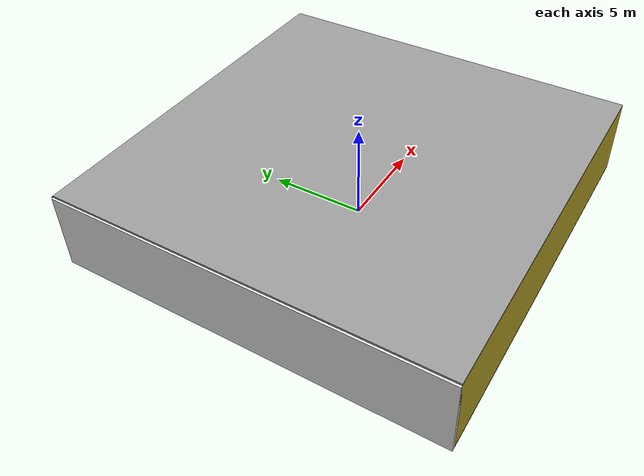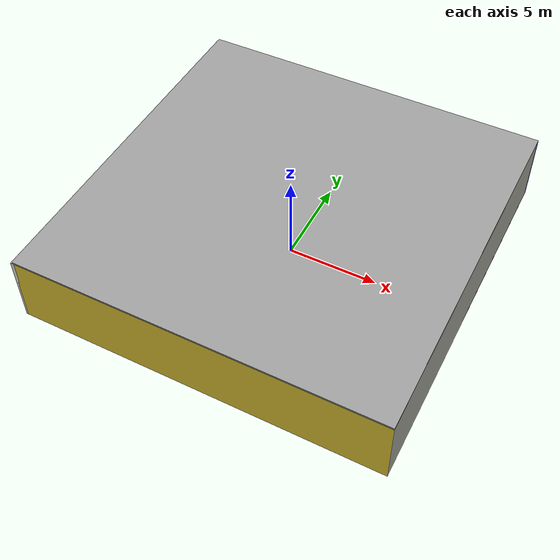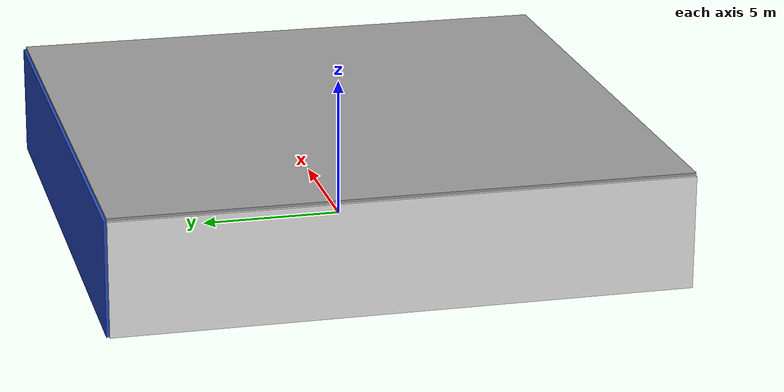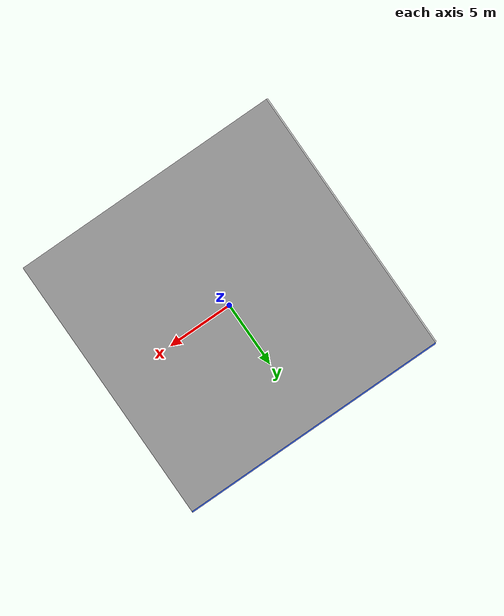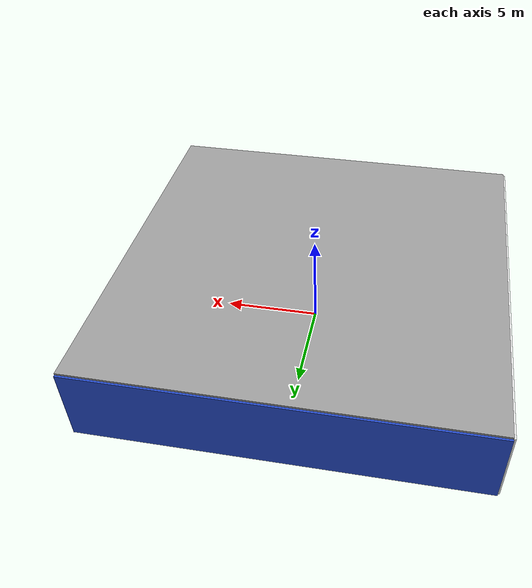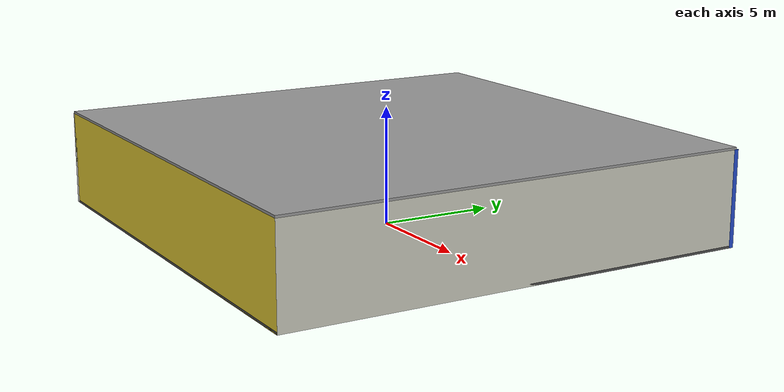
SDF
<sdf version="1.4">
 <world name="default">
  <physics type="ode">
   <max_step_size>0.001</max_step_size>
   <real_time_factor>1</real_time_factor>
   <real_time_update_rate>1000</real_time_update_rate>
   <gravity>0 0 -9.8</gravity>
  </physics>
  <scene><ambient>0.4 0.4 0.4 1</ambient><background>0.7 0.7 0.7 1</background><shadows>1</shadows></scene>
  <model name="Surrounding">
   <static>1</static>
   <link name="Ceiling">
    <collision name="Ceiling_Collision"><geometry><box><size>20 20 0.1</size></box></geometry></collision>
    <visual name="Ceiling_Visual">
     <geometry><box><size>20 20 0.1</size></box></geometry>
     <material>
      <script><uri>file://media/materials/scripts/gazebo.material</uri><name>Gazebo/GreyGradientSky</name></script>
     </material>
    </visual>
    <pose>0 0 4.05 0 0 0</pose>
   </link>
   <link name="Wall_South">
    <collision name="Wall_South_Collision">
     <geometry><box><size>20 0 4</size></box></geometry>
     <pose>0 0 2 0 -0 0</pose>
    </collision>
    <visual name="Wall_South_Visual">
     <pose>0 0 2 0 -0 0</pose>
     <geometry><box><size>20 0 4</size></box></geometry>
     <material>
      <script><uri>file://media/materials/scripts/gazebo.material</uri><name>Gazebo/ZincYellow</name></script>
     </material>
    </visual>
    <velocity_decay><linear>0</linear><angular>0</angular></velocity_decay>
    <pose>0 -10 0 0 -0 0</pose>
   </link>
   <link name="Wall_East">
    <collision name="Wall_21_Collision">
     <geometry><box><size>20 0 4</size></box></geometry>
     <pose>0 0 2 0 -0 0</pose>
    </collision>
    <visual name="Wall_21_Visual">
     <pose>0 0 2 0 -0 0</pose>
     <geometry><box><size>20 0 4</size></box></geometry>
     <material>
      <script><uri>file://media/materials/scripts/gazebo.material</uri><name>Gazebo/PaintedWall</name></script>
     </material>
    </visual>
    <velocity_decay><linear>0</linear><angular>0</angular></velocity_decay>
    <pose>10 0 0 0 -0 1.5708</pose>
   </link>
   <link name="Wall_North">
    <collision name="Wall_22_Collision">
     <geometry><box><size>20 0.2 4</size></box></geometry>
     <pose>0 0 2 0 -0 0</pose>
    </collision>
    <visual name="Wall_22_Visual">
     <pose>0 0 2 0 -0 0</pose>
     <geometry><box><size>20 0.2 4</size></box></geometry>
     <material>
      <script><uri>file://media/materials/scripts/gazebo.material</uri><name>Gazebo/Blue</name></script>
     </material>
    </visual>
    <velocity_decay><linear>0</linear><angular>0</angular></velocity_decay>
    <pose>0 10 0 0 -0 0</pose>
   </link>
   <link name="Wall_West">
    <collision name="Wall_23_Collision">
     <geometry><box><size>20 0.2 4</size></box></geometry>
     <pose>0 0 2 0 -0 0</pose>
    </collision>
    <visual name="Wall_23_Visual">
     <pose>0 0 2 0 -0 0</pose>
     <geometry><box><size>20 0.2 4</size></box></geometry>
     <material>
      <script><uri>file://media/materials/scripts/gazebo.material</uri><name>Gazebo/White</name></script>
     </material>
    </visual>
    <velocity_decay><linear>0</linear><angular>0</angular></velocity_decay>
    <pose>-10 0 0 0 0 -1.5708</pose>
   </link>
   <link name="Ground_link">
    <collision name="collision">
     <pose>0 0 .05 0 -0 0</pose>
     <geometry><box><size>20 20 0.1</size></box></geometry>
    </collision>
    <visual name="visual">
     <pose>0 0 .05 0 -0 0</pose>
     <geometry><box><size>20 20 0.1</size></box></geometry>
     <material>
      <script><uri>file://media/materials/scripts/gazebo.material</uri><name>Gazebo/Road</name></script>
     </material>
    </visual>
   </link>
   <static>1</static>
  </model>
  <spherical_coordinates>
   <surface_model>EARTH_WGS84</surface_model>
   <latitude_deg>0</latitude_deg>
   <longitude_deg>0</longitude_deg>
   <elevation>0</elevation>
   <heading_deg>0</heading_deg>
  </spherical_coordinates>
  <light name="lightball_0" type="diffuse">
   <diffuse>0.8 0.8 0.8 1</diffuse>
   <specular>0.2 0.2 0.2 1</specular>
   <attenuation>
    <range>100</range>
    <constant>0.7</constant>
    <linear>0.01</linear>
    <quadratic>0.001</quadratic>
   </attenuation>
   <direction>-0.5 0.1 -0.9</direction>
   <pose>-8.95656472653 -6.40976438693 1.66415629581 0 0 0</pose>
  </light>
  <light name="lightball_1" type="diffuse">
   <diffuse>0.8 0.8 0.8 1</diffuse>
   <specular>0.2 0.2 0.2 1</specular>
   <attenuation>
    <range>100</range>
    <constant>0.7</constant>
    <linear>0.01</linear>
    <quadratic>0.001</quadratic>
   </attenuation>
   <direction>-0.5 0.1 -0.9</direction>
   <pose>9.69741231444 4.11507671143 3.01096656596 0 0 0</pose>
  </light>
  <light name="lightball_2" type="diffuse">
   <diffuse>0.8 0.8 0.8 1</diffuse>
   <specular>0.2 0.2 0.2 1</specular>
   <attenuation>
    <range>100</range>
    <constant>0.7</constant>
    <linear>0.01</linear>
    <quadratic>0.001</quadratic>
   </attenuation>
   <direction>-0.5 0.1 -0.9</direction>
   <pose>-6.60478995753 -8.1776593749 2.99916539339 0 0 0</pose>
  </light>
  <light name="lightball_3" type="diffuse">
   <diffuse>0.8 0.8 0.8 1</diffuse>
   <specular>0.2 0.2 0.2 1</specular>
   <attenuation>
    <range>100</range>
    <constant>0.7</constant>
    <linear>0.01</linear>
    <quadratic>0.001</quadratic>
   </attenuation>
   <direction>-0.5 0.1 -0.9</direction>
   <pose>9.28355231894 -3.02266999013 2.34538460349 0 0 0</pose>
  </light>
  <light name="lightball_4" type="diffuse">
   <diffuse>0.8 0.8 0.8 1</diffuse>
   <specular>0.2 0.2 0.2 1</specular>
   <attenuation>
    <range>100</range>
    <constant>0.7</constant>
    <linear>0.01</linear>
    <quadratic>0.001</quadratic>
   </attenuation>
   <direction>-0.5 0.1 -0.9</direction>
   <pose>-7.1904250861 3.57681249187 2.11845033051 0 0 0</pose>
  </light>
  <light name="lightball_5" type="diffuse">
   <diffuse>0.8 0.8 0.8 1</diffuse>
   <specular>0.2 0.2 0.2 1</specular>
   <attenuation>
    <range>100</range>
    <constant>0.7</constant>
    <linear>0.01</linear>
    <quadratic>0.001</quadratic>
   </attenuation>
   <direction>-0.5 0.1 -0.9</direction>
   <pose>2.57347813518 -6.50707295855 3.72717426003 0 0 0</pose>
  </light>
  <light name="lightball_6" type="diffuse">
   <diffuse>0.8 0.8 0.8 1</diffuse>
   <specular>0.2 0.2 0.2 1</specular>
   <attenuation>
    <range>100</range>
    <constant>0.7</constant>
    <linear>0.01</linear>
    <quadratic>0.001</quadratic>
   </attenuation>
   <direction>-0.5 0.1 -0.9</direction>
   <pose>6.2414964168 8.81862836815 3.45095171356 0 0 0</pose>
  </light>
  <light name="lightball_7" type="diffuse">
   <diffuse>0.8 0.8 0.8 1</diffuse>
   <specular>0.2 0.2 0.2 1</specular>
   <attenuation>
    <range>100</range>
    <constant>0.7</constant>
    <linear>0.01</linear>
    <quadratic>0.001</quadratic>
   </attenuation>
   <direction>-0.5 0.1 -0.9</direction>
   <pose>7.29330375253 -7.11240543455 3.41980044639 0 0 0</pose>
  </light>
  <light name="lightball_8" type="diffuse">
   <diffuse>0.8 0.8 0.8 1</diffuse>
   <specular>0.2 0.2 0.2 1</specular>
   <attenuation>
    <range>100</range>
    <constant>0.7</constant>
    <linear>0.01</linear>
    <quadratic>0.001</quadratic>
   </attenuation>
   <direction>-0.5 0.1 -0.9</direction>
   <pose>2.96397367949 -4.19860016724 2.23440967013 0 0 0</pose>
  </light>
  <light name="lightball_9" type="diffuse">
   <diffuse>0.8 0.8 0.8 1</diffuse>
   <specular>0.2 0.2 0.2 1</specular>
   <attenuation>
    <range>100</range>
    <constant>0.7</constant>
    <linear>0.01</linear>
    <quadratic>0.001</quadratic>
   </attenuation>
   <direction>-0.5 0.1 -0.9</direction>
   <pose>1.36943159606 -0.115611174357 3.57435727398 0 0 0</pose>
  </light>
  <light name="lightball_10" type="diffuse">
   <diffuse>0.8 0.8 0.8 1</diffuse>
   <specular>0.2 0.2 0.2 1</specular>
   <attenuation>
    <range>100</range>
    <constant>0.7</constant>
    <linear>0.01</linear>
    <quadratic>0.001</quadratic>
   </attenuation>
   <direction>-0.5 0.1 -0.9</direction>
   <pose>-7.61027652959 -2.88195027195 2.7940658504 0 0 0</pose>
  </light>
  <light name="lightball_11" type="diffuse">
   <diffuse>0.8 0.8 0.8 1</diffuse>
   <specular>0.2 0.2 0.2 1</specular>
   <attenuation>
    <range>100</range>
    <constant>0.7</constant>
    <linear>0.01</linear>
    <quadratic>0.001</quadratic>
   </attenuation>
   <direction>-0.5 0.1 -0.9</direction>
   <pose>9.54113243022 -3.25964320136 2.24223868771 0 0 0</pose>
  </light>
  <light name="lightball_12" type="diffuse">
   <diffuse>0.8 0.8 0.8 1</diffuse>
   <specular>0.2 0.2 0.2 1</specular>
   <attenuation>
    <range>100</range>
    <constant>0.7</constant>
    <linear>0.01</linear>
    <quadratic>0.001</quadratic>
   </attenuation>
   <direction>-0.5 0.1 -0.9</direction>
   <pose>1.64743428146 9.66639169285 2.88046624696 0 0 0</pose>
  </light>
  <include>
   <uri>model://textured_shapes</uri>
   <pose>-6.81862579993 7.40741879117 0 0 0 0.818285114282</pose>
  </include>
  <include><uri>model://cabinet</uri><pose>-4.54440933378 1.98441896151 0 0 0 1.68584507394</pose></include>
  <include><uri>model://table</uri><pose>-1.64347201726 -5.21431995025 0 0 0 3.02452960997</pose></include>
  <include>
   <uri>model://robocup_3Dsim_goal</uri>
   <pose>-1.97027054663 3.91381774581 0 0 0 2.38912909402</pose>
  </include>
  <include><uri>model://table</uri><pose>4.62953112102 -2.04412155969 0 0 0 2.66130934287</pose></include>
  <include><uri>model://table</uri><pose>8.14734120685 -0.821210332196 0 0 0 2.07956607926</pose></include>
 </world>
</sdf>

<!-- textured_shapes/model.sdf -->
<sdf version="1.6">
  <model name="textured_shapes">
    <pose>0 0 0.5 0 0 0</pose>
    <link name="box">
      <pose>0 -1.5 0 0 0 0</pose>
      <collision name="collision">
        <geometry>
          <box>
            <size>1 1 1</size>
          </box>
        </geometry>
      </collision>
      <visual name="visual">
        <geometry>
          <box>
            <size>1 1 1</size>
          </box>
        </geometry>
        <material>
          <script>
            <uri>model://../model_source/models/textured_shapes/materials/scripts</uri>
            <uri>model://../model_source/models/textured_shapes/materials/textures</uri>
            <name>TexturedShape/Squares</name>
          </script>
        </material>
      </visual>
    </link>
    <link name="sphere">
      <collision name="collision">
        <geometry>
          <sphere>
            <radius>0.5</radius>
          </sphere>
        </geometry>
      </collision>
      <visual name="visual">
        <geometry>
          <sphere>
            <radius>0.5</radius>
          </sphere>
        </geometry>
        <material>
          <script>
            <uri>model://../model_source/models/textured_shapes/materials/scripts</uri>
            <uri>model://../model_source/models/textured_shapes/materials/textures</uri>
            <name>TexturedShape/Squares</name>
          </script>
        </material>
      </visual>
    </link>
    <link name="cylinder">
      <pose>0 1.5 0 0 0 0</pose>
      <collision name="collision">
        <geometry>
          <cylinder>
            <radius>0.5</radius>
            <length>1</length>
          </cylinder>
        </geometry>
      </collision>
      <visual name="visual">
        <geometry>
          <cylinder>
            <radius>0.5</radius>
            <length>1</length>
          </cylinder>
        </geometry>
        <material>
          <script>
            <uri>model://../model_source/models/textured_shapes/materials/scripts</uri>
            <uri>model://../model_source/models/textured_shapes/materials/textures</uri>
            <name>TexturedShape/Squares</name>
          </script>
        </material>
      </visual>
    </link>
  </model>
</sdf>

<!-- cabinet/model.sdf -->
<sdf version="1.5">
  <model name="cabinet">
    <static>true</static>
    <link name="cabinet_bottom_plate">
      <inertial>
        <pose>0 0 -1 0 0 0</pose>
        <inertia>
          <ixx>2.050000</ixx>
          <ixy>0</ixy>
          <ixz>0</ixz>
          <iyy>2.050000</iyy>
          <iyz>0</iyz>
          <izz>2.050000</izz>
        </inertia>
        <mass>25.000000</mass>
      </inertial>
      <collision name="cabinet_bottom_plate_geom">
        <pose>0 0 0.010000 0 0 0</pose>
        <geometry>
          <box>
            <size>0.450000 0.450000 0.020000</size>
          </box>
        </geometry>
      </collision>
      <visual name="cabinet_bottom_plate_geom_visual">
        <pose>0 0 0.010000 0 0 0</pose>
        <geometry>
          <box>
            <size>0.450000 0.450000 0.020000</size>
          </box>
        </geometry>
        <material>
          <script>
            <uri>model://media/materials/scripts/gazebo.material</uri>
            <name>Gazebo/Wood</name>
          </script>
        </material>
      </visual>
      <collision name="cabinet_bottom_plate_geom_cabinet_back_plate">
        <pose>0.235000 0 0.510000 0 0 0</pose>
        <geometry>
          <box>
            <size>0.020000 0.450000 1.020000</size>
          </box>
        </geometry>
      </collision>
      <visual name="cabinet_bottom_plate_geom_cabinet_back_plate_visual">
        <pose>0.235000 0 0.510000 0 0 0</pose>
        <geometry>
          <box>
            <size>0.020000 0.450000 1.020000</size>
          </box>
        </geometry>
        <material>
          <script>
            <uri>model://media/materials/scripts/gazebo.material</uri>
            <name>Gazebo/Wood</name>
          </script>
        </material>
      </visual>
      <collision name="cabinet_bottom_plate_geom_cabinet_left_plate">
        <pose>0 0.235000 0.510000 0 0 0</pose>
        <geometry>
          <box>
            <size>0.450000 0.020000 1.020000</size>
          </box>
        </geometry>
      </collision>
      <visual name="cabinet_bottom_plate_geom_cabinet_left_plate_visual">
        <pose>0 0.235000 0.510000 0 0 0</pose>
        <geometry>
          <box>
            <size>0.450000 0.020000 1.020000</size>
          </box>
        </geometry>
        <material>
          <script>
            <uri>model://media/materials/scripts/gazebo.material</uri>
            <name>Gazebo/Wood</name>
          </script>
        </material>
      </visual>
      <collision name="cabinet_bottom_plate_geom_cabinet_middle_plate">
        <pose>0 0 0.510000 0 0 0</pose>
        <geometry>
          <box>
            <size>0.450000 0.450000 0.020000</size>
          </box>
        </geometry>
      </collision>
      <visual name="cabinet_bottom_plate_geom_cabinet_middle_plate_visual">
        <pose>0 0 0.510000 0 0 0</pose>
        <geometry>
          <box>
            <size>0.450000 0.450000 0.020000</size>
          </box>
        </geometry>
        <material>
          <script>
            <uri>model://media/materials/scripts/gazebo.material</uri>
            <name>Gazebo/Wood</name>
          </script>
        </material>
      </visual>
      <collision name="cabinet_bottom_plate_geom_cabinet_right_plate">
        <pose>0 -0.235000 0.510000 0 0 0</pose>
        <geometry>
          <box>
            <size>0.450000 0.020000 1.020000</size>
          </box>
        </geometry>
      </collision>
      <visual name="cabinet_bottom_plate_geom_cabinet_right_plate_visual">
        <pose>0 -0.235000 0.510000 0 0 0</pose>
        <geometry>
          <box>
            <size>0.450000 0.020000 1.020000</size>
          </box>
        </geometry>
        <material>
          <script>
            <uri>model://media/materials/scripts/gazebo.material</uri>
            <name>Gazebo/Wood</name>
          </script>
        </material>
      </visual>
      <collision name="cabinet_bottom_plate_geom_cabinet_top_plate">
        <pose>0 0 1.010000 0 0 0</pose>
        <geometry>
          <box>
            <size>0.450000 0.450000 0.020000</size>
          </box>
        </geometry>
      </collision>
      <visual name="cabinet_bottom_plate_geom_cabinet_top_plate_visual">
        <pose>0 0 1.010000 0 0 0</pose>
        <geometry>
          <box>
            <size>0.450000 0.450000 0.020000</size>
          </box>
        </geometry>
        <material>
          <script>
            <uri>model://media/materials/scripts/gazebo.material</uri>
            <name>Gazebo/Wood</name>
          </script>
        </material>
      </visual>
    </link>
  </model>
</sdf>

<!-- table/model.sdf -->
<sdf version="1.5">
  <model name="table">
    <static>true</static>
    <link name="link">
      <collision name="surface">
        <pose>0 0 1.0 0 0 0</pose>
        <geometry>
          <box>
            <size>1.5 0.8 0.03</size>
          </box>
        </geometry>
        <surface>
          <friction>
            <ode>
              <mu>0.6</mu>
              <mu2>0.6</mu2>
            </ode>
          </friction>
        </surface>
      </collision>
      <visual name="visual1">
        <pose>0 0 1.0 0 0 0</pose>
        <geometry>
          <box>
            <size>1.5 0.8 0.03</size>
          </box>
        </geometry>
        <material>
          <script>
            <uri>model://media/materials/scripts/gazebo.material</uri>
            <name>Gazebo/Wood</name>
          </script>
        </material>
      </visual>
      <collision name="front_left_leg">
        <pose>0.68 0.38 0.5 0 0 0</pose>
        <geometry>
          <cylinder>
            <radius>0.02</radius>
            <length>1.0</length>
          </cylinder>
        </geometry>
      </collision>
      <visual name="front_left_leg">
        <pose>0.68 0.38 0.5 0 0 0</pose>
        <geometry>
          <cylinder>
            <radius>0.02</radius>
            <length>1.0</length>
          </cylinder>
        </geometry>
        <material>
          <script>
            <uri>model://media/materials/scripts/gazebo.material</uri>
            <name>Gazebo/Grey</name>
          </script>
        </material>
      </visual>
      <collision name="front_right_leg">
        <pose>0.68 -0.38 0.5 0 0 0</pose>
        <geometry>
          <cylinder>
            <radius>0.02</radius>
            <length>1.0</length>
          </cylinder>
        </geometry>
      </collision>
      <visual name="front_right_leg">
        <pose>0.68 -0.38 0.5 0 0 0</pose>
        <geometry>
          <cylinder>
            <radius>0.02</radius>
            <length>1.0</length>
          </cylinder>
        </geometry>
        <material>
          <script>
            <uri>model://media/materials/scripts/gazebo.material</uri>
            <name>Gazebo/Grey</name>
          </script>
        </material>
      </visual>
      <collision name="back_right_leg">
        <pose>-0.68 -0.38 0.5 0 0 0</pose>
        <geometry>
          <cylinder>
            <radius>0.02</radius>
            <length>1.0</length>
          </cylinder>
        </geometry>
      </collision>
      <visual name="back_right_leg">
        <pose>-0.68 -0.38 0.5 0 0 0</pose>
        <geometry>
          <cylinder>
            <radius>0.02</radius>
            <length>1.0</length>
          </cylinder>
        </geometry>
        <material>
          <script>
            <uri>model://media/materials/scripts/gazebo.material</uri>
            <name>Gazebo/Grey</name>
          </script>
        </material>
      </visual>
      <collision name="back_left_leg">
        <pose>-0.68 0.38 0.5 0 0 0</pose>
        <geometry>
          <cylinder>
            <radius>0.02</radius>
            <length>1.0</length>
          </cylinder>
        </geometry>
      </collision>
      <visual name="back_left_leg">
        <pose>-0.68 0.38 0.5 0 0 0</pose>
        <geometry>
          <cylinder>
            <radius>0.02</radius>
            <length>1.0</length>
          </cylinder>
        </geometry>
        <material>
          <script>
            <uri>model://media/materials/scripts/gazebo.material</uri>
            <name>Gazebo/Grey</name>
          </script>
        </material>
      </visual>
    </link>
  </model>
</sdf>

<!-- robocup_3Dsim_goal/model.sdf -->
<sdf version="1.5">
  <model name="robocup_3d_goal">
    <static>true</static>
    <link name="left_post">
      <pose>0 1.05 0.45 0 0 0</pose>
      <collision name="collision">
        <geometry>
          <cylinder>
            <radius>0.05</radius>
            <length>0.9</length>
          </cylinder>
        </geometry>
      </collision>
      <visual name="visual">
        <geometry>
          <cylinder>
            <radius>0.05</radius>
            <length>0.9</length>
          </cylinder>
        </geometry>
        <material>
          <script>
            <uri>file://media/materials/scripts/gazebo.material</uri>
            <name>Gazebo/ZincYellow</name>
          </script>
        </material>
      </visual>
    </link>
    <link name="left_support_horiz_lower">
      <pose>0.30 1.05 0.01 0 0 0</pose>
      <collision name="collision">
        <geometry>
          <box>
            <size>0.50 0.02 0.02</size>
          </box>
        </geometry>
      </collision>
      <visual name="visual">
        <geometry>
          <box>
            <size>0.50 0.02 0.02</size>
          </box>
        </geometry>
        <material>
          <script>
            <uri>file://media/materials/scripts/gazebo.material</uri>
            <name>Gazebo/White</name>
          </script>
        </material>
      </visual>
    </link>
    <link name="left_support_horiz_upper">
      <pose>0.30 1.05 0.79 0 0 0</pose>
      <collision name="collision">
        <geometry>
          <box>
            <size>0.50 0.02 0.02</size>
          </box>
        </geometry>
      </collision>
      <visual name="visual">
        <geometry>
          <box>
            <size>0.50 0.02 0.02</size>
          </box>
        </geometry>
        <material>
          <script>
            <uri>file://media/materials/scripts/gazebo.material</uri>
            <name>Gazebo/White</name>
          </script>
        </material>
      </visual>
    </link>
    <link name="left_support_vertical">
      <pose>0.56 1.05 0.4 0 1.5708 0</pose>
      <collision name="collision">
        <geometry>
          <box>
            <size>0.80 0.02 0.02</size>
          </box>
        </geometry>
      </collision>
      <visual name="visual">
        <geometry>
          <box>
            <size>0.80 0.02 0.02</size>
          </box>
        </geometry>
        <material>
          <script>
            <uri>file://media/materials/scripts/gazebo.material</uri>
            <name>Gazebo/White</name>
          </script>
        </material>
      </visual>
    </link>
    <link name="right_support_horiz_lower">
      <pose>0.30 -1.05 0.01 0 0 0</pose>
      <collision name="collision">
        <geometry>
          <box>
            <size>0.50 0.02 0.02</size>
          </box>
        </geometry>
      </collision>
      <visual name="visual">
        <geometry>
          <box>
            <size>0.50 0.02 0.02</size>
          </box>
        </geometry>
        <material>
          <script>
            <uri>file://media/materials/scripts/gazebo.material</uri>
            <name>Gazebo/White</name>
          </script>
        </material>
      </visual>
    </link>
    <link name="right_support_horiz_upper">
      <pose>0.30 -1.05 0.79 0 0 0</pose>
      <collision name="collision">
        <geometry>
          <box>
            <size>0.50 0.02 0.02</size>
          </box>
        </geometry>
      </collision>
      <visual name="visual">
        <geometry>
          <box>
            <size>0.50 0.02 0.02</size>
          </box>
        </geometry>
        <material>
          <script>
            <uri>file://media/materials/scripts/gazebo.material</uri>
            <name>Gazebo/White</name>
          </script>
        </material>
      </visual>
    </link>
    <link name="right_support_vertical">
      <pose>0.56 -1.05 0.4 0 1.5708 0</pose>
      <collision name="collision">
        <geometry>
          <box>
            <size>0.80 0.02 0.02</size>
          </box>
        </geometry>
      </collision>
      <visual name="visual">
        <geometry>
          <box>
            <size>0.80 0.02 0.02</size>
          </box>
        </geometry>
        <material>
          <script>
            <uri>file://media/materials/scripts/gazebo.material</uri>
            <name>Gazebo/White</name>
          </script>
        </material>
      </visual>
    </link>
    <link name="center_support_horiz_lower">
      <pose>0.56 0 0.01 0 1.5708 0</pose>
      <collision name="collision">
        <geometry>
          <box>
            <size>0.02 2.08 0.02</size>
          </box>
        </geometry>
      </collision>
      <visual name="visual">
        <geometry>
          <box>
            <size>0.02 2.08 0.02</size>
          </box>
        </geometry>
        <material>
          <script>
            <uri>file://media/materials/scripts/gazebo.material</uri>
            <name>Gazebo/White</name>
          </script>
        </material>
      </visual>
    </link>
    <link name="center_support_horiz_upper">
      <pose>0.56 0 0.79 0 1.5708 0</pose>
      <collision name="collision">
        <geometry>
          <box>
            <size>0.02 2.08 0.02</size>
          </box>
        </geometry>
      </collision>
      <visual name="visual">
        <geometry>
          <box>
            <size>0.02 2.08 0.02</size>
          </box>
        </geometry>
        <material>
          <script>
            <uri>file://media/materials/scripts/gazebo.material</uri>
            <name>Gazebo/White</name>
          </script>
        </material>
      </visual>
    </link>
    <link name="right_post">
      <pose>0 -1.05 0.45 0 0 0</pose>
      <collision name="collision">
        <geometry>
          <cylinder>
            <radius>0.05</radius>
            <length>0.9</length>
          </cylinder>
        </geometry>
      </collision>
      <visual name="visual">
        <geometry>
          <cylinder>
            <radius>0.05</radius>
            <length>0.9</length>
          </cylinder>
        </geometry>
        <material>
          <script>
            <uri>file://media/materials/scripts/gazebo.material</uri>
            <name>Gazebo/ZincYellow</name>
          </script>
        </material>
      </visual>
    </link>
    <link name="crossbar">
      <pose>0 0 0.85 1.57 1.57 0</pose>
      <collision name="collision">
        <geometry>
          <cylinder>
            <radius>0.05</radius>
            <length>2.0</length>
          </cylinder>
        </geometry>
      </collision>
      <visual name="visual">
        <geometry>
          <cylinder>
            <radius>0.05</radius>
            <length>2.0</length>
          </cylinder>
        </geometry>
        <material>
          <script>
            <uri>file://media/materials/scripts/gazebo.material</uri>
            <name>Gazebo/ZincYellow</name>
          </script>
        </material>
      </visual>
    </link>
    <link name="center_net">
      <pose>0.56 0 0.40 0 0 0</pose>
      <collision name="collision">
        <geometry>
          <box>
            <size>0.01 2.1 0.80</size>
          </box>
        </geometry>
      </collision>
      <visual name="visual">
        <geometry>
          <box>
            <size>0.01 2.1 0.80</size>
          </box>
        </geometry>
        <material>
          <script>
            <uri>model://../model_source/models/robocup09_spl_field/materials/scripts/</uri>
            <uri>model://../model_source/models/robocup09_spl_field/materials/textures/</uri>
            <name>RoboCup/Net</name>
          </script>
        </material>
      </visual>
    </link>
    <link name="left_net">
      <pose>0.30 1.05 0.40 0 0 0</pose>
      <collision name="collision">
        <geometry>
          <box>
            <size>0.50 0.01 0.76</size>
          </box>
        </geometry>
      </collision>
      <visual name="visual">
        <geometry>
          <box>
            <size>0.50 0.01 0.76</size>
          </box>
        </geometry>
        <material>
          <script>
            <uri>model://../model_source/models/robocup09_spl_field/materials/scripts/</uri>
            <uri>model://../model_source/models/robocup09_spl_field/materials/textures/</uri>
            <name>RoboCup/Net</name>
          </script>
        </material>
      </visual>
    </link>
    <link name="right_net">
      <pose>0.30 -1.05 0.40 0 0 0</pose>
      <collision name="collision">
        <geometry>
          <box>
            <size>0.50 0.01 0.76</size>
          </box>
        </geometry>
      </collision>
      <visual name="visual">
        <geometry>
          <box>
            <size>0.50 0.01 0.76</size>
          </box>
        </geometry>
        <material>
          <script>
            <uri>model://../model_source/models/robocup09_spl_field/materials/scripts/</uri>
            <uri>model://../model_source/models/robocup09_spl_field/materials/textures/</uri>
            <name>RoboCup/Net</name>
          </script>
        </material>
      </visual>
    </link>
  </model>
</sdf>
